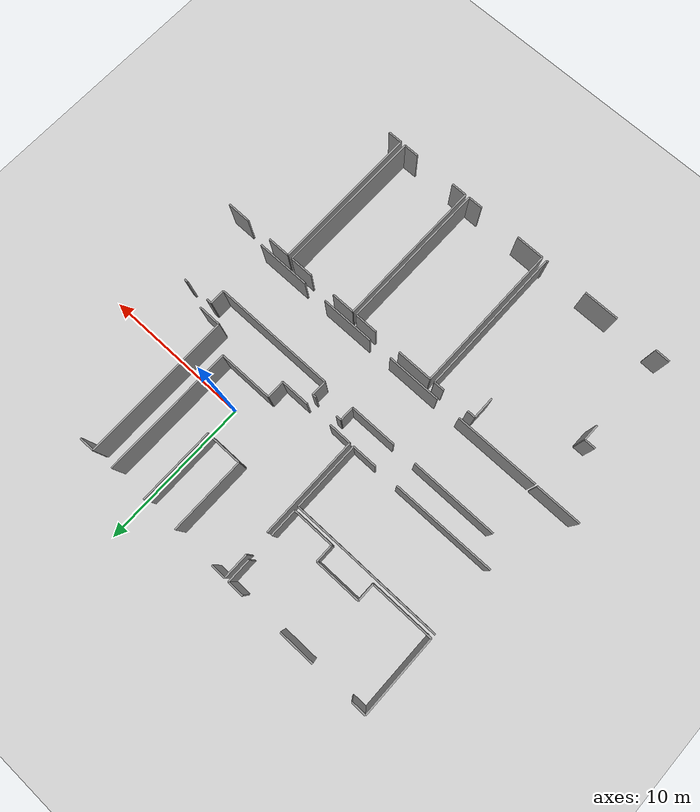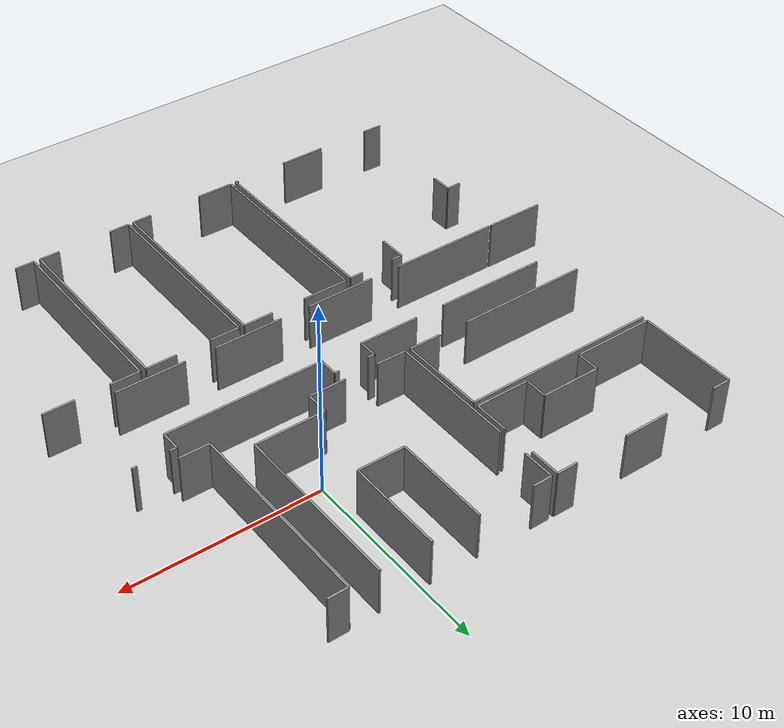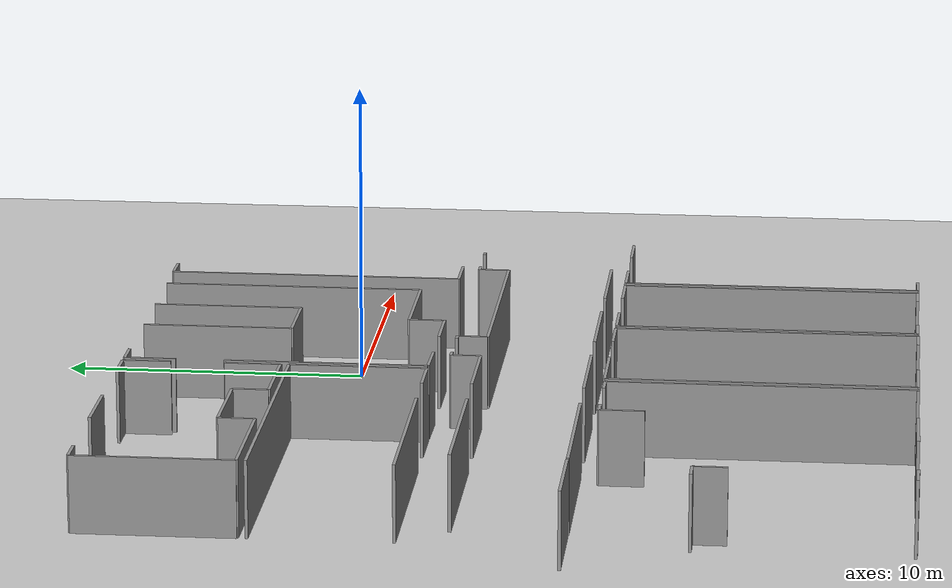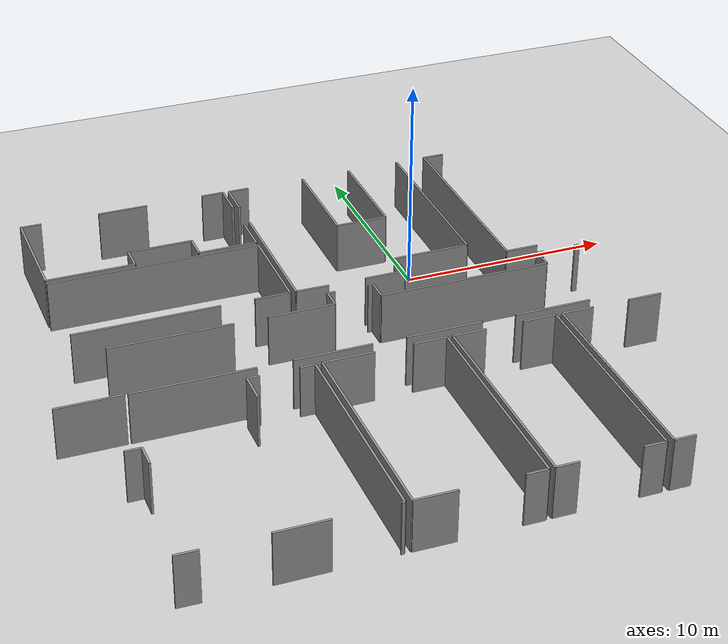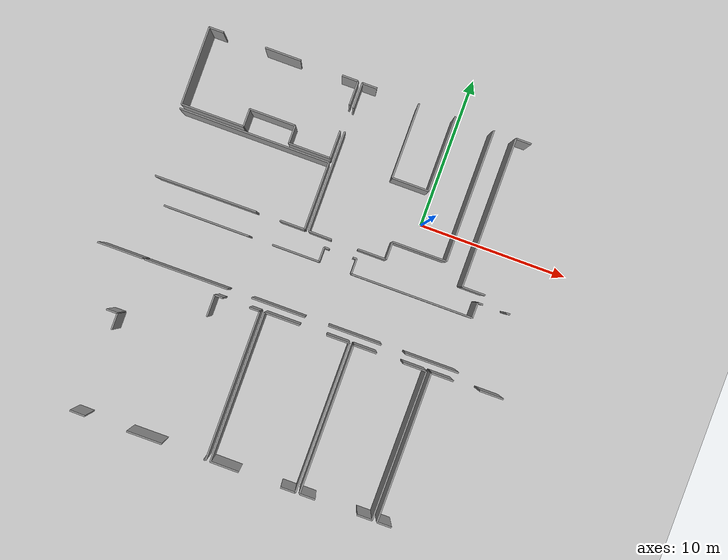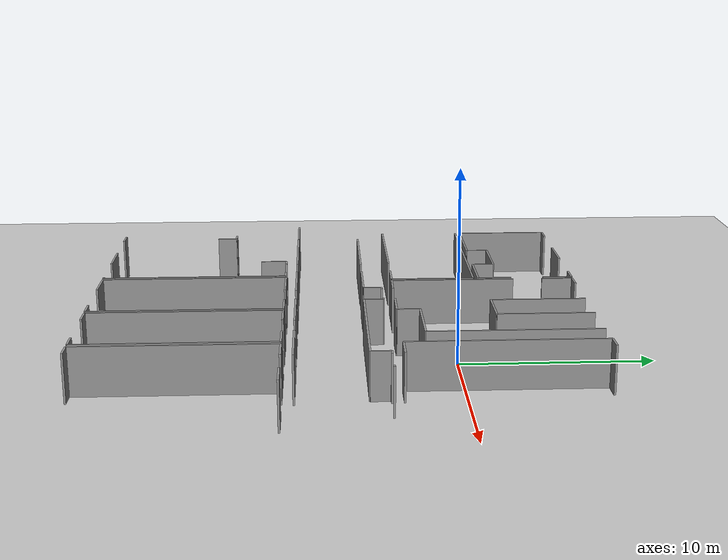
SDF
<sdf version="1.6">
 <world name="default">
  <model name="ground_plane">
   <static>1</static>
   <link name="link">
    <collision name="collision">
     <geometry><plane><normal>0 0 1</normal><size>100 100</size></plane></geometry>
     <surface><friction><ode><mu>100</mu><mu2>50</mu2></ode></friction></surface>
    </collision>
    <visual name="visual">
     <cast_shadows>0</cast_shadows>
     <geometry><plane><normal>0 0 1</normal><size>100 100</size></plane></geometry>
     <material>
      <script><uri>file://media/materials/scripts/gazebo.material</uri><name>Gazebo/Grey</name></script>
     </material>
    </visual>
   </link>
  </model>
  <model name="50055641">
   <static>1</static>
   <link name="Wall_58">
    <collision name="Wall_58_Collision">
     <geometry><box><size>3.02174713402 0.1 2.5</size></box></geometry>
     <pose>1.51087356701 0 1.25 0 0 0</pose>
    </collision>
    <visual name="Wall_58_Visual">
     <pose>1.51087356701 0 1.25 0 0 0</pose>
     <geometry><box><size>3.02174713402 0.1 2.5</size></box></geometry>
     <material>
      <script><uri>file://media/materials/scripts/gazebo.material</uri><name>Gazebo/Grey</name></script>
      <ambient>1 1 1 1</ambient>
     </material>
    </visual>
    <pose>53.3327832015 -26.8581548579 0 0 0 3.14159265359</pose>
   </link>
   <link name="Wall_202">
    <collision name="Wall_202_Collision">
     <geometry><box><size>5.70160850081 0.1 2.5</size></box></geometry>
     <pose>2.8508042504 0 1.25 0 0 0</pose>
    </collision>
    <visual name="Wall_202_Visual">
     <pose>2.8508042504 0 1.25 0 0 0</pose>
     <geometry><box><size>5.70160850081 0.1 2.5</size></box></geometry>
     <material>
      <script><uri>file://media/materials/scripts/gazebo.material</uri><name>Gazebo/Grey</name></script>
      <ambient>1 1 1 1</ambient>
     </material>
    </visual>
    <pose>53.4577054425 -23.2691794995 0 0 0 0.0</pose>
   </link>
   <link name="Wall_203">
    <collision name="Wall_203_Collision">
     <geometry><box><size>3.12305602458 0.1 2.5</size></box></geometry>
     <pose>1.56152801229 0 1.25 0 0 0</pose>
    </collision>
    <visual name="Wall_203_Visual">
     <pose>1.56152801229 0 1.25 0 0 0</pose>
     <geometry><box><size>3.12305602458 0.1 2.5</size></box></geometry>
     <material>
      <script><uri>file://media/materials/scripts/gazebo.material</uri><name>Gazebo/Grey</name></script>
      <ambient>1 1 1 1</ambient>
     </material>
    </visual>
    <pose>60.7218575836 -23.2691794995 0 0 0 0.0</pose>
   </link>
   <link name="Wall_204">
    <collision name="Wall_204_Collision">
     <geometry><box><size>0.968655181607 0.1 2.5</size></box></geometry>
     <pose>0.484327590803 0 1.25 0 0 0</pose>
    </collision>
    <visual name="Wall_204_Visual">
     <pose>0.484327590803 0 1.25 0 0 0</pose>
     <geometry><box><size>0.968655181607 0.1 2.5</size></box></geometry>
     <material>
      <script><uri>file://media/materials/scripts/gazebo.material</uri><name>Gazebo/Grey</name></script>
      <ambient>1 1 1 1</ambient>
     </material>
    </visual>
    <pose>63.8449136081 -23.2691794995 0 0 0 1.57079632679</pose>
   </link>
   <link name="Wall_205">
    <collision name="Wall_205_Collision">
     <geometry><box><size>0.347852581599 0.1 2.5</size></box></geometry>
     <pose>0.1739262908 0 1.25 0 0 0</pose>
    </collision>
    <visual name="Wall_205_Visual">
     <pose>0.1739262908 0 1.25 0 0 0</pose>
     <geometry><box><size>0.347852581599 0.1 2.5</size></box></geometry>
     <material>
      <script><uri>file://media/materials/scripts/gazebo.material</uri><name>Gazebo/Grey</name></script>
      <ambient>1 1 1 1</ambient>
     </material>
    </visual>
    <pose>63.8449136081 -22.3005243179 0 0 0 0.0</pose>
   </link>
   <link name="Wall_206">
    <collision name="Wall_206_Collision">
     <geometry><box><size>0.242862039635 0.1 2.5</size></box></geometry>
     <pose>0.121431019817 0 1.25 0 0 0</pose>
    </collision>
    <visual name="Wall_206_Visual">
     <pose>0.121431019817 0 1.25 0 0 0</pose>
     <geometry><box><size>0.242862039635 0.1 2.5</size></box></geometry>
     <material>
      <script><uri>file://media/materials/scripts/gazebo.material</uri><name>Gazebo/Grey</name></script>
      <ambient>1 1 1 1</ambient>
     </material>
    </visual>
    <pose>65.776257157 -22.3005243179 0 0 0 0.0</pose>
   </link>
   <link name="Wall_207">
    <collision name="Wall_207_Collision">
     <geometry><box><size>1.00953420762 0.1 2.5</size></box></geometry>
     <pose>0.50476710381 0 1.25 0 0 0</pose>
    </collision>
    <visual name="Wall_207_Visual">
     <pose>0.50476710381 0 1.25 0 0 0</pose>
     <geometry><box><size>1.00953420762 0.1 2.5</size></box></geometry>
     <material>
      <script><uri>file://media/materials/scripts/gazebo.material</uri><name>Gazebo/Grey</name></script>
      <ambient>1 1 1 1</ambient>
     </material>
    </visual>
    <pose>66.0191191966 -22.3005243179 0 0 0 -1.57079632679</pose>
   </link>
   <link name="Wall_208">
    <collision name="Wall_208_Collision">
     <geometry><box><size>8.11397884955 0.1 2.5</size></box></geometry>
     <pose>4.05698942477 0 1.25 0 0 0</pose>
    </collision>
    <visual name="Wall_208_Visual">
     <pose>4.05698942477 0 1.25 0 0 0</pose>
     <geometry><box><size>8.11397884955 0.1 2.5</size></box></geometry>
     <material>
      <script><uri>file://media/materials/scripts/gazebo.material</uri><name>Gazebo/Grey</name></script>
      <ambient>1 1 1 1</ambient>
     </material>
    </visual>
    <pose>66.0191191966 -23.3100585256 0 0 0 0.0</pose>
   </link>
   <link name="Wall_209">
    <collision name="Wall_209_Collision">
     <geometry><box><size>1.01562797547 0.1 2.5</size></box></geometry>
     <pose>0.507813987736 0 1.25 0 0 0</pose>
    </collision>
    <visual name="Wall_209_Visual">
     <pose>0.507813987736 0 1.25 0 0 0</pose>
     <geometry><box><size>1.01562797547 0.1 2.5</size></box></geometry>
     <material>
      <script><uri>file://media/materials/scripts/gazebo.material</uri><name>Gazebo/Grey</name></script>
      <ambient>1 1 1 1</ambient>
     </material>
    </visual>
    <pose>74.1330980462 -23.3100585256 0 0 0 1.57079632679</pose>
   </link>
   <link name="Wall_210">
    <collision name="Wall_210_Collision">
     <geometry><box><size>0.342266627734 0.1 2.5</size></box></geometry>
     <pose>0.171133313867 0 1.25 0 0 0</pose>
    </collision>
    <visual name="Wall_210_Visual">
     <pose>0.171133313867 0 1.25 0 0 0</pose>
     <geometry><box><size>0.342266627734 0.1 2.5</size></box></geometry>
     <material>
      <script><uri>file://media/materials/scripts/gazebo.material</uri><name>Gazebo/Grey</name></script>
      <ambient>1 1 1 1</ambient>
     </material>
    </visual>
    <pose>74.1330980462 -22.2944305501 0 0 0 0.0</pose>
   </link>
   <link name="Wall_211">
    <collision name="Wall_211_Collision">
     <geometry><box><size>0.242862039635 0.1 2.5</size></box></geometry>
     <pose>0.121431019817 0 1.25 0 0 0</pose>
    </collision>
    <visual name="Wall_211_Visual">
     <pose>0.121431019817 0 1.25 0 0 0</pose>
     <geometry><box><size>0.242862039635 0.1 2.5</size></box></geometry>
     <material>
      <script><uri>file://media/materials/scripts/gazebo.material</uri><name>Gazebo/Grey</name></script>
      <ambient>1 1 1 1</ambient>
     </material>
    </visual>
    <pose>76.0540314083 -22.2944305501 0 0 0 0.0</pose>
   </link>
   <link name="Wall_239">
    <collision name="Wall_239_Collision">
     <geometry><box><size>3.58783277685 0.1 2.5</size></box></geometry>
     <pose>1.79391638843 0 1.25 0 0 0</pose>
    </collision>
    <visual name="Wall_239_Visual">
     <pose>1.79391638843 0 1.25 0 0 0</pose>
     <geometry><box><size>3.58783277685 0.1 2.5</size></box></geometry>
     <material>
      <script><uri>file://media/materials/scripts/gazebo.material</uri><name>Gazebo/Grey</name></script>
      <ambient>1 1 1 1</ambient>
     </material>
    </visual>
    <pose>74.5084995366 -26.8594243928 0 0 0 3.14159265359</pose>
   </link>
   <link name="Wall_240">
    <collision name="Wall_240_Collision">
     <geometry><box><size>3.55622135612 0.1 2.5</size></box></geometry>
     <pose>1.77811067806 0 1.25 0 0 0</pose>
    </collision>
    <visual name="Wall_240_Visual">
     <pose>1.77811067806 0 1.25 0 0 0</pose>
     <geometry><box><size>3.55622135612 0.1 2.5</size></box></geometry>
     <material>
      <script><uri>file://media/materials/scripts/gazebo.material</uri><name>Gazebo/Grey</name></script>
      <ambient>1 1 1 1</ambient>
     </material>
    </visual>
    <pose>69.3392070485 -26.8594243928 0 0 0 3.14159265359</pose>
   </link>
   <link name="Wall_241">
    <collision name="Wall_241_Collision">
     <geometry><box><size>3.59976640557 0.1 2.5</size></box></geometry>
     <pose>1.79988320278 0 1.25 0 0 0</pose>
    </collision>
    <visual name="Wall_241_Visual">
     <pose>1.79988320278 0 1.25 0 0 0</pose>
     <geometry><box><size>3.59976640557 0.1 2.5</size></box></geometry>
     <material>
      <script><uri>file://media/materials/scripts/gazebo.material</uri><name>Gazebo/Grey</name></script>
      <ambient>1 1 1 1</ambient>
     </material>
    </visual>
    <pose>64.2278053549 -26.8594243928 0 0 0 3.14159265359</pose>
   </link>
   <link name="Wall_242">
    <collision name="Wall_242_Collision">
     <geometry><box><size>5.57276725746 0.1 2.5</size></box></geometry>
     <pose>2.78638362873 0 1.25 0 0 0</pose>
    </collision>
    <visual name="Wall_242_Visual">
     <pose>2.78638362873 0 1.25 0 0 0</pose>
     <geometry><box><size>5.57276725746 0.1 2.5</size></box></geometry>
     <material>
      <script><uri>file://media/materials/scripts/gazebo.material</uri><name>Gazebo/Grey</name></script>
      <ambient>1 1 1 1</ambient>
     </material>
    </visual>
    <pose>59.0304561439 -26.8594243928 0 0 0 -3.13915507868</pose>
   </link>
   <link name="Wall_244">
    <collision name="Wall_244_Collision">
     <geometry><box><size>10.0008886745 0.1 2.5</size></box></geometry>
     <pose>5.00044433724 0 1.25 0 0 0</pose>
    </collision>
    <visual name="Wall_244_Visual">
     <pose>5.00044433724 0 1.25 0 0 0</pose>
     <geometry><box><size>10.0008886745 0.1 2.5</size></box></geometry>
     <material>
      <script><uri>file://media/materials/scripts/gazebo.material</uri><name>Gazebo/Grey</name></script>
      <ambient>1 1 1 1</ambient>
     </material>
    </visual>
    <pose>52.2970965735 -17.1835366705 0 0 0 0.0</pose>
   </link>
   <link name="Wall_245">
    <collision name="Wall_245_Collision">
     <geometry><box><size>4.48755220963 0.1 2.5</size></box></geometry>
     <pose>2.24377610481 0 1.25 0 0 0</pose>
    </collision>
    <visual name="Wall_245_Visual">
     <pose>2.24377610481 0 1.25 0 0 0</pose>
     <geometry><box><size>4.48755220963 0.1 2.5</size></box></geometry>
     <material>
      <script><uri>file://media/materials/scripts/gazebo.material</uri><name>Gazebo/Grey</name></script>
      <ambient>1 1 1 1</ambient>
     </material>
    </visual>
    <pose>62.297985248 -17.1835366705 0 0 0 -1.57079632679</pose>
   </link>
   <link name="Wall_246">
    <collision name="Wall_246_Collision">
     <geometry><box><size>1.65268062309 0.1 2.5</size></box></geometry>
     <pose>0.826340311544 0 1.25 0 0 0</pose>
    </collision>
    <visual name="Wall_246_Visual">
     <pose>0.826340311544 0 1.25 0 0 0</pose>
     <geometry><box><size>1.65268062309 0.1 2.5</size></box></geometry>
     <material>
      <script><uri>file://media/materials/scripts/gazebo.material</uri><name>Gazebo/Grey</name></script>
      <ambient>1 1 1 1</ambient>
     </material>
    </visual>
    <pose>62.297985248 -21.6710888801 0 0 0 3.14159265359</pose>
   </link>
   <link name="Wall_247">
    <collision name="Wall_247_Collision">
     <geometry><box><size>6.76629506893 0.1 2.5</size></box></geometry>
     <pose>3.38314753446 0 1.25 0 0 0</pose>
    </collision>
    <visual name="Wall_247_Visual">
     <pose>3.38314753446 0 1.25 0 0 0</pose>
     <geometry><box><size>6.76629506893 0.1 2.5</size></box></geometry>
     <material>
      <script><uri>file://media/materials/scripts/gazebo.material</uri><name>Gazebo/Grey</name></script>
      <ambient>1 1 1 1</ambient>
     </material>
    </visual>
    <pose>59.0633370996 -21.6710888801 0 0 0 -3.13757743979</pose>
   </link>
   <link name="Wall_248">
    <collision name="Wall_248_Collision">
     <geometry><box><size>6.65274409984 0.1 2.5</size></box></geometry>
     <pose>3.32637204992 0 1.25 0 0 0</pose>
    </collision>
    <visual name="Wall_248_Visual">
     <pose>3.32637204992 0 1.25 0 0 0</pose>
     <geometry><box><size>6.65274409984 0.1 2.5</size></box></geometry>
     <material>
      <script><uri>file://media/materials/scripts/gazebo.material</uri><name>Gazebo/Grey</name></script>
      <ambient>1 1 1 1</ambient>
     </material>
    </visual>
    <pose>62.5817263137 -21.675913113 0 0 0 1.57079632679</pose>
   </link>
   <link name="Wall_249">
    <collision name="Wall_249_Collision">
     <geometry><box><size>1.67781741548 0.1 2.5</size></box></geometry>
     <pose>0.83890870774 0 1.25 0 0 0</pose>
    </collision>
    <visual name="Wall_249_Visual">
     <pose>0.83890870774 0 1.25 0 0 0</pose>
     <geometry><box><size>1.67781741548 0.1 2.5</size></box></geometry>
     <material>
      <script><uri>file://media/materials/scripts/gazebo.material</uri><name>Gazebo/Grey</name></script>
      <ambient>1 1 1 1</ambient>
     </material>
    </visual>
    <pose>62.5817263137 -13.4438675113 0 0 0 1.57079632679</pose>
   </link>
   <link name="Wall_250">
    <collision name="Wall_250_Collision">
     <geometry><box><size>0.985032182711 0.1 2.5</size></box></geometry>
     <pose>0.492516091356 0 1.25 0 0 0</pose>
    </collision>
    <visual name="Wall_250_Visual">
     <pose>0.492516091356 0 1.25 0 0 0</pose>
     <geometry><box><size>0.985032182711 0.1 2.5</size></box></geometry>
     <material>
      <script><uri>file://media/materials/scripts/gazebo.material</uri><name>Gazebo/Grey</name></script>
      <ambient>1 1 1 1</ambient>
     </material>
    </visual>
    <pose>62.5817263137 -11.7660500958 0 0 0 0.0</pose>
   </link>
   <link name="Wall_251">
    <collision name="Wall_251_Collision">
     <geometry><box><size>4.96667470705 0.1 2.5</size></box></geometry>
     <pose>2.48333735353 0 1.25 0 0 0</pose>
    </collision>
    <visual name="Wall_251_Visual">
     <pose>2.48333735353 0 1.25 0 0 0</pose>
     <geometry><box><size>4.96667470705 0.1 2.5</size></box></geometry>
     <material>
      <script><uri>file://media/materials/scripts/gazebo.material</uri><name>Gazebo/Grey</name></script>
      <ambient>1 1 1 1</ambient>
     </material>
    </visual>
    <pose>66.3881730122 -11.7660500958 0 0 0 -1.57079632679</pose>
   </link>
   <link name="Wall_252">
    <collision name="Wall_252_Collision">
     <geometry><box><size>2.43598369917 0.1 2.5</size></box></geometry>
     <pose>1.21799184959 0 1.25 0 0 0</pose>
    </collision>
    <visual name="Wall_252_Visual">
     <pose>1.21799184959 0 1.25 0 0 0</pose>
     <geometry><box><size>2.43598369917 0.1 2.5</size></box></geometry>
     <material>
      <script><uri>file://media/materials/scripts/gazebo.material</uri><name>Gazebo/Grey</name></script>
      <ambient>1 1 1 1</ambient>
     </material>
    </visual>
    <pose>66.3881730122 -16.7327248029 0 0 0 0.0</pose>
   </link>
   <link name="Wall_253">
    <collision name="Wall_253_Collision">
     <geometry><box><size>4.98406733613 0.1 2.5</size></box></geometry>
     <pose>2.49203366807 0 1.25 0 0 0</pose>
    </collision>
    <visual name="Wall_253_Visual">
     <pose>2.49203366807 0 1.25 0 0 0</pose>
     <geometry><box><size>4.98406733613 0.1 2.5</size></box></geometry>
     <material>
      <script><uri>file://media/materials/scripts/gazebo.material</uri><name>Gazebo/Grey</name></script>
      <ambient>1 1 1 1</ambient>
     </material>
    </visual>
    <pose>68.8241567114 -16.7327248029 0 0 0 1.57079632679</pose>
   </link>
   <link name="Wall_254">
    <collision name="Wall_254_Collision">
     <geometry><box><size>8.7658850563 0.1 2.5</size></box></geometry>
     <pose>4.38294252815 0 1.25 0 0 0</pose>
    </collision>
    <visual name="Wall_254_Visual">
     <pose>4.38294252815 0 1.25 0 0 0</pose>
     <geometry><box><size>8.7658850563 0.1 2.5</size></box></geometry>
     <material>
      <script><uri>file://media/materials/scripts/gazebo.material</uri><name>Gazebo/Grey</name></script>
      <ambient>1 1 1 1</ambient>
     </material>
    </visual>
    <pose>71.3966154198 -11.7486574668 0 0 0 -1.57079632679</pose>
   </link>
   <link name="Wall_255">
    <collision name="Wall_255_Collision">
     <geometry><box><size>3.61043049931 0.1 2.5</size></box></geometry>
     <pose>1.80521524965 0 1.25 0 0 0</pose>
    </collision>
    <visual name="Wall_255_Visual">
     <pose>1.80521524965 0 1.25 0 0 0</pose>
     <geometry><box><size>3.61043049931 0.1 2.5</size></box></geometry>
     <material>
      <script><uri>file://media/materials/scripts/gazebo.material</uri><name>Gazebo/Grey</name></script>
      <ambient>1 1 1 1</ambient>
     </material>
    </visual>
    <pose>71.3966154198 -20.5145425231 0 0 0 3.14159265359</pose>
   </link>
   <link name="Wall_256">
    <collision name="Wall_256_Collision">
     <geometry><box><size>1.18307963793 0.1 2.5</size></box></geometry>
     <pose>0.591539818964 0 1.25 0 0 0</pose>
    </collision>
    <visual name="Wall_256_Visual">
     <pose>0.591539818964 0 1.25 0 0 0</pose>
     <geometry><box><size>1.18307963793 0.1 2.5</size></box></geometry>
     <material>
      <script><uri>file://media/materials/scripts/gazebo.material</uri><name>Gazebo/Grey</name></script>
      <ambient>1 1 1 1</ambient>
     </material>
    </visual>
    <pose>67.7861849205 -20.5145425231 0 0 0 -1.57079632679</pose>
   </link>
   <link name="Wall_257">
    <collision name="Wall_257_Collision">
     <geometry><box><size>1.90176338407 0.1 2.5</size></box></geometry>
     <pose>0.950881692036 0 1.25 0 0 0</pose>
    </collision>
    <visual name="Wall_257_Visual">
     <pose>0.950881692036 0 1.25 0 0 0</pose>
     <geometry><box><size>1.90176338407 0.1 2.5</size></box></geometry>
     <material>
      <script><uri>file://media/materials/scripts/gazebo.material</uri><name>Gazebo/Grey</name></script>
      <ambient>1 1 1 1</ambient>
     </material>
    </visual>
    <pose>67.7861849205 -21.697622161 0 0 0 3.14159265359</pose>
   </link>
   <link name="Wall_258">
    <collision name="Wall_258_Collision">
     <geometry><box><size>1.53616376307 0.1 2.5</size></box></geometry>
     <pose>0.768081881534 0 1.25 0 0 0</pose>
    </collision>
    <visual name="Wall_258_Visual">
     <pose>0.768081881534 0 1.25 0 0 0</pose>
     <geometry><box><size>1.53616376307 0.1 2.5</size></box></geometry>
     <material>
      <script><uri>file://media/materials/scripts/gazebo.material</uri><name>Gazebo/Grey</name></script>
      <ambient>1 1 1 1</ambient>
     </material>
    </visual>
    <pose>64.1177366731 -21.697622161 0 0 0 3.12746019509</pose>
   </link>
   <link name="Wall_259">
    <collision name="Wall_259_Collision">
     <geometry><box><size>5.14821820767 0.1 2.5</size></box></geometry>
     <pose>2.57410910384 0 1.25 0 0 0</pose>
    </collision>
    <visual name="Wall_259_Visual">
     <pose>2.57410910384 0 1.25 0 0 0</pose>
     <geometry><box><size>5.14821820767 0.1 2.5</size></box></geometry>
     <material>
      <script><uri>file://media/materials/scripts/gazebo.material</uri><name>Gazebo/Grey</name></script>
      <ambient>1 1 1 1</ambient>
     </material>
    </visual>
    <pose>52.3175360865 -16.8976373954 0 0 0 1.57079632679</pose>
   </link>
   <link name="Wall_260">
    <collision name="Wall_260_Collision">
     <geometry><box><size>0.956848506392 0.1 2.5</size></box></geometry>
     <pose>0.478424253196 0 1.25 0 0 0</pose>
    </collision>
    <visual name="Wall_260_Visual">
     <pose>0.478424253196 0 1.25 0 0 0</pose>
     <geometry><box><size>0.956848506392 0.1 2.5</size></box></geometry>
     <material>
      <script><uri>file://media/materials/scripts/gazebo.material</uri><name>Gazebo/Grey</name></script>
      <ambient>1 1 1 1</ambient>
     </material>
    </visual>
    <pose>52.3175360865 -11.7494191878 0 0 0 0.0</pose>
   </link>
   <link name="Wall_261">
    <collision name="Wall_261_Collision">
     <geometry><box><size>2.37326867169 0.1 2.5</size></box></geometry>
     <pose>1.18663433584 0 1.25 0 0 0</pose>
    </collision>
    <visual name="Wall_261_Visual">
     <pose>1.18663433584 0 1.25 0 0 0</pose>
     <geometry><box><size>2.37326867169 0.1 2.5</size></box></geometry>
     <material>
      <script><uri>file://media/materials/scripts/gazebo.material</uri><name>Gazebo/Grey</name></script>
      <ambient>1 1 1 1</ambient>
     </material>
    </visual>
    <pose>56.0739631073 -11.7494191878 0 0 0 0.0</pose>
   </link>
   <link name="Wall_262">
    <collision name="Wall_262_Collision">
     <geometry><box><size>1.07301095609 0.1 2.5</size></box></geometry>
     <pose>0.536505478043 0 1.25 0 0 0</pose>
    </collision>
    <visual name="Wall_262_Visual">
     <pose>0.536505478043 0 1.25 0 0 0</pose>
     <geometry><box><size>1.07301095609 0.1 2.5</size></box></geometry>
     <material>
      <script><uri>file://media/materials/scripts/gazebo.material</uri><name>Gazebo/Grey</name></script>
      <ambient>1 1 1 1</ambient>
     </material>
    </visual>
    <pose>61.2181188031 -11.7494191878 0 0 0 0.0</pose>
   </link>
   <link name="Wall_263">
    <collision name="Wall_263_Collision">
     <geometry><box><size>1.58349096726 0.1 2.5</size></box></geometry>
     <pose>0.791745483629 0 1.25 0 0 0</pose>
    </collision>
    <visual name="Wall_263_Visual">
     <pose>0.791745483629 0 1.25 0 0 0</pose>
     <geometry><box><size>1.58349096726 0.1 2.5</size></box></geometry>
     <material>
      <script><uri>file://media/materials/scripts/gazebo.material</uri><name>Gazebo/Grey</name></script>
      <ambient>1 1 1 1</ambient>
     </material>
    </visual>
    <pose>62.2911297592 -11.7494191878 0 0 0 -1.57079632679</pose>
   </link>
   <link name="Wall_264">
    <collision name="Wall_264_Collision">
     <geometry><box><size>1.8219096345 0.1 2.5</size></box></geometry>
     <pose>0.91095481725 0 1.25 0 0 0</pose>
    </collision>
    <visual name="Wall_264_Visual">
     <pose>0.91095481725 0 1.25 0 0 0</pose>
     <geometry><box><size>1.8219096345 0.1 2.5</size></box></geometry>
     <material>
      <script><uri>file://media/materials/scripts/gazebo.material</uri><name>Gazebo/Grey</name></script>
      <ambient>1 1 1 1</ambient>
     </material>
    </visual>
    <pose>62.2911297592 -15.0851223197 0 0 0 -1.57079632679</pose>
   </link>
   <link name="Wall_265">
    <collision name="Wall_265_Collision">
     <geometry><box><size>2.774187815 0.1 2.5</size></box></geometry>
     <pose>1.3870939075 0 1.25 0 0 0</pose>
    </collision>
    <visual name="Wall_265_Visual">
     <pose>1.3870939075 0 1.25 0 0 0</pose>
     <geometry><box><size>2.774187815 0.1 2.5</size></box></geometry>
     <material>
      <script><uri>file://media/materials/scripts/gazebo.material</uri><name>Gazebo/Grey</name></script>
      <ambient>1 1 1 1</ambient>
     </material>
    </visual>
    <pose>62.2911297592 -16.9070319542 0 0 0 3.14159265359</pose>
   </link>
   <link name="Wall_266">
    <collision name="Wall_266_Collision">
     <geometry><box><size>1.18117533547 0.1 2.5</size></box></geometry>
     <pose>0.590587667737 0 1.25 0 0 0</pose>
    </collision>
    <visual name="Wall_266_Visual">
     <pose>0.590587667737 0 1.25 0 0 0</pose>
     <geometry><box><size>1.18117533547 0.1 2.5</size></box></geometry>
     <material>
      <script><uri>file://media/materials/scripts/gazebo.material</uri><name>Gazebo/Grey</name></script>
      <ambient>1 1 1 1</ambient>
     </material>
    </visual>
    <pose>59.5169419442 -16.9070319542 0 0 0 1.57079632679</pose>
   </link>
   <link name="Wall_267">
    <collision name="Wall_267_Collision">
     <geometry><box><size>3.04688392642 0.1 2.5</size></box></geometry>
     <pose>1.52344196321 0 1.25 0 0 0</pose>
    </collision>
    <visual name="Wall_267_Visual">
     <pose>1.52344196321 0 1.25 0 0 0</pose>
     <geometry><box><size>3.04688392642 0.1 2.5</size></box></geometry>
     <material>
      <script><uri>file://media/materials/scripts/gazebo.material</uri><name>Gazebo/Grey</name></script>
      <ambient>1 1 1 1</ambient>
     </material>
    </visual>
    <pose>59.5169419442 -15.7258566187 0 0 0 3.14159265359</pose>
   </link>
   <link name="Wall_268">
    <collision name="Wall_268_Collision">
     <geometry><box><size>1.17025733474 0.1 2.5</size></box></geometry>
     <pose>0.585128667369 0 1.25 0 0 0</pose>
    </collision>
    <visual name="Wall_268_Visual">
     <pose>0.585128667369 0 1.25 0 0 0</pose>
     <geometry><box><size>1.17025733474 0.1 2.5</size></box></geometry>
     <material>
      <script><uri>file://media/materials/scripts/gazebo.material</uri><name>Gazebo/Grey</name></script>
      <ambient>1 1 1 1</ambient>
     </material>
    </visual>
    <pose>56.4700580177 -15.7258566187 0 0 0 -1.57079632679</pose>
   </link>
   <link name="Wall_269">
    <collision name="Wall_269_Collision">
     <geometry><box><size>4.15252221067 0.1 2.5</size></box></geometry>
     <pose>2.07626110534 0 1.25 0 0 0</pose>
    </collision>
    <visual name="Wall_269_Visual">
     <pose>2.07626110534 0 1.25 0 0 0</pose>
     <geometry><box><size>4.15252221067 0.1 2.5</size></box></geometry>
     <material>
      <script><uri>file://media/materials/scripts/gazebo.material</uri><name>Gazebo/Grey</name></script>
      <ambient>1 1 1 1</ambient>
     </material>
    </visual>
    <pose>56.4700580177 -16.8961139535 0 0 0 -3.1412257821</pose>
   </link>
   <link name="Wall_270">
    <collision name="Wall_270_Collision">
     <geometry><box><size>9.93665020503 0.1 2.5</size></box></geometry>
     <pose>4.96832510251 0 1.25 0 0 0</pose>
    </collision>
    <visual name="Wall_270_Visual">
     <pose>4.96832510251 0 1.25 0 0 0</pose>
     <geometry><box><size>9.93665020503 0.1 2.5</size></box></geometry>
     <material>
      <script><uri>file://media/materials/scripts/gazebo.material</uri><name>Gazebo/Grey</name></script>
      <ambient>1 1 1 1</ambient>
     </material>
    </visual>
    <pose>72.8770201475 -21.6853076718 0 0 0 1.57079632679</pose>
   </link>
   <link name="Wall_271">
    <collision name="Wall_271_Collision">
     <geometry><box><size>1.02159478983 0.1 2.5</size></box></geometry>
     <pose>0.510797394914 0 1.25 0 0 0</pose>
    </collision>
    <visual name="Wall_271_Visual">
     <pose>0.510797394914 0 1.25 0 0 0</pose>
     <geometry><box><size>1.02159478983 0.1 2.5</size></box></geometry>
     <material>
      <script><uri>file://media/materials/scripts/gazebo.material</uri><name>Gazebo/Grey</name></script>
      <ambient>1 1 1 1</ambient>
     </material>
    </visual>
    <pose>72.8770201475 -11.7486574668 0 0 0 0.0</pose>
   </link>
   <link name="Wall_275">
    <collision name="Wall_275_Collision">
     <geometry><box><size>1.53589180089 0.1 2.5</size></box></geometry>
     <pose>0.767945900446 0 1.25 0 0 0</pose>
    </collision>
    <visual name="Wall_275_Visual">
     <pose>0.767945900446 0 1.25 0 0 0</pose>
     <geometry><box><size>1.53589180089 0.1 2.5</size></box></geometry>
     <material>
      <script><uri>file://media/materials/scripts/gazebo.material</uri><name>Gazebo/Grey</name></script>
      <ambient>1 1 1 1</ambient>
     </material>
    </visual>
    <pose>74.4129035534 -21.6903858117 0 0 0 3.13828633401</pose>
   </link>
   <link name="Wall_326">
    <collision name="Wall_326_Collision">
     <geometry><box><size>0.969543856086 0.1 2.5</size></box></geometry>
     <pose>0.484771928043 0 1.25 0 0 0</pose>
    </collision>
    <visual name="Wall_326_Visual">
     <pose>0.484771928043 0 1.25 0 0 0</pose>
     <geometry><box><size>0.969543856086 0.1 2.5</size></box></geometry>
     <material>
      <script><uri>file://media/materials/scripts/gazebo.material</uri><name>Gazebo/Grey</name></script>
      <ambient>1 1 1 1</ambient>
     </material>
    </visual>
    <pose>73.8562124694 -37.4477268976 0 0 0 3.14159265359</pose>
   </link>
   <link name="Wall_327">
    <collision name="Wall_327_Collision">
     <geometry><box><size>9.99314451117 0.1 2.5</size></box></geometry>
     <pose>4.99657225558 0 1.25 0 0 0</pose>
    </collision>
    <visual name="Wall_327_Visual">
     <pose>4.99657225558 0 1.25 0 0 0</pose>
     <geometry><box><size>9.99314451117 0.1 2.5</size></box></geometry>
     <material>
      <script><uri>file://media/materials/scripts/gazebo.material</uri><name>Gazebo/Grey</name></script>
      <ambient>1 1 1 1</ambient>
     </material>
    </visual>
    <pose>72.8866686133 -37.4477268976 0 0 0 1.57079632679</pose>
   </link>
   <link name="Wall_328">
    <collision name="Wall_328_Collision">
     <geometry><box><size>1.5070649621 0.1 2.5</size></box></geometry>
     <pose>0.753532481052 0 1.25 0 0 0</pose>
    </collision>
    <visual name="Wall_328_Visual">
     <pose>0.753532481052 0 1.25 0 0 0</pose>
     <geometry><box><size>1.5070649621 0.1 2.5</size></box></geometry>
     <material>
      <script><uri>file://media/materials/scripts/gazebo.material</uri><name>Gazebo/Grey</name></script>
      <ambient>1 1 1 1</ambient>
     </material>
    </visual>
    <pose>72.8866686133 -27.4545823865 0 0 0 0.0</pose>
   </link>
   <link name="Wall_329">
    <collision name="Wall_329_Collision">
     <geometry><box><size>1.58971168861 0.1 2.5</size></box></geometry>
     <pose>0.794855844304 0 1.25 0 0 0</pose>
    </collision>
    <visual name="Wall_329_Visual">
     <pose>0.794855844304 0 1.25 0 0 0</pose>
     <geometry><box><size>1.58971168861 0.1 2.5</size></box></geometry>
     <material>
      <script><uri>file://media/materials/scripts/gazebo.material</uri><name>Gazebo/Grey</name></script>
      <ambient>1 1 1 1</ambient>
     </material>
    </visual>
    <pose>76.1422640887 -27.4545823865 0 0 0 0.0</pose>
   </link>
   <link name="Wall_331">
    <collision name="Wall_331_Collision">
     <geometry><box><size>1.01385062652 0.1 2.5</size></box></geometry>
     <pose>0.506925313258 0 1.25 0 0 0</pose>
    </collision>
    <visual name="Wall_331_Visual">
     <pose>0.506925313258 0 1.25 0 0 0</pose>
     <geometry><box><size>1.01385062652 0.1 2.5</size></box></geometry>
     <material>
      <script><uri>file://media/materials/scripts/gazebo.material</uri><name>Gazebo/Grey</name></script>
      <ambient>1 1 1 1</ambient>
     </material>
    </visual>
    <pose>72.5526539629 -37.4393479668 0 0 0 3.14159265359</pose>
   </link>
   <link name="Wall_332">
    <collision name="Wall_332_Collision">
     <geometry><box><size>1.04863588468 0.1 2.5</size></box></geometry>
     <pose>0.524317942338 0 1.25 0 0 0</pose>
    </collision>
    <visual name="Wall_332_Visual">
     <pose>0.524317942338 0 1.25 0 0 0</pose>
     <geometry><box><size>1.04863588468 0.1 2.5</size></box></geometry>
     <material>
      <script><uri>file://media/materials/scripts/gazebo.material</uri><name>Gazebo/Grey</name></script>
      <ambient>1 1 1 1</ambient>
     </material>
    </visual>
    <pose>68.7347814496 -37.4393479668 0 0 0 3.14159265359</pose>
   </link>
   <link name="Wall_333">
    <collision name="Wall_333_Collision">
     <geometry><box><size>9.97854485902 0.1 2.5</size></box></geometry>
     <pose>4.98927242951 0 1.25 0 0 0</pose>
    </collision>
    <visual name="Wall_333_Visual">
     <pose>4.98927242951 0 1.25 0 0 0</pose>
     <geometry><box><size>9.97854485902 0.1 2.5</size></box></geometry>
     <material>
      <script><uri>file://media/materials/scripts/gazebo.material</uri><name>Gazebo/Grey</name></script>
      <ambient>1 1 1 1</ambient>
     </material>
    </visual>
    <pose>67.6861455649 -37.4393479668 0 0 0 1.57079632679</pose>
   </link>
   <link name="Wall_334">
    <collision name="Wall_334_Collision">
     <geometry><box><size>1.55644987241 0.1 2.5</size></box></geometry>
     <pose>0.778224936206 0 1.25 0 0 0</pose>
    </collision>
    <visual name="Wall_334_Visual">
     <pose>0.778224936206 0 1.25 0 0 0</pose>
     <geometry><box><size>1.55644987241 0.1 2.5</size></box></geometry>
     <material>
      <script><uri>file://media/materials/scripts/gazebo.material</uri><name>Gazebo/Grey</name></script>
      <ambient>1 1 1 1</ambient>
     </material>
    </visual>
    <pose>67.6861455649 -27.4608031078 0 0 0 0.0</pose>
   </link>
   <link name="Wall_335">
    <collision name="Wall_335_Collision">
     <geometry><box><size>1.57511203646 0.1 2.5</size></box></geometry>
     <pose>0.787556018231 0 1.25 0 0 0</pose>
    </collision>
    <visual name="Wall_335_Visual">
     <pose>0.787556018231 0 1.25 0 0 0</pose>
     <geometry><box><size>1.57511203646 0.1 2.5</size></box></geometry>
     <material>
      <script><uri>file://media/materials/scripts/gazebo.material</uri><name>Gazebo/Grey</name></script>
      <ambient>1 1 1 1</ambient>
     </material>
    </visual>
    <pose>71.0014091838 -27.4608031078 0 0 0 0.0</pose>
   </link>
   <link name="Wall_336">
    <collision name="Wall_336_Collision">
     <geometry><box><size>9.97857340252 0.1 2.5</size></box></geometry>
     <pose>4.98928670126 0 1.25 0 0 0</pose>
    </collision>
    <visual name="Wall_336_Visual">
     <pose>4.98928670126 0 1.25 0 0 0</pose>
     <geometry><box><size>9.97857340252 0.1 2.5</size></box></geometry>
     <material>
      <script><uri>file://media/materials/scripts/gazebo.material</uri><name>Gazebo/Grey</name></script>
      <ambient>1 1 1 1</ambient>
     </material>
    </visual>
    <pose>72.5765212203 -27.4608031078 0 0 0 -1.57318817974</pose>
   </link>
   <link name="Wall_337">
    <collision name="Wall_337_Collision">
     <geometry><box><size>9.99124020871 0.1 2.5</size></box></geometry>
     <pose>4.99562010436 0 1.25 0 0 0</pose>
    </collision>
    <visual name="Wall_337_Visual">
     <pose>4.99562010436 0 1.25 0 0 0</pose>
     <geometry><box><size>9.99124020871 0.1 2.5</size></box></geometry>
     <material>
      <script><uri>file://media/materials/scripts/gazebo.material</uri><name>Gazebo/Grey</name></script>
      <ambient>1 1 1 1</ambient>
     </material>
    </visual>
    <pose>61.7120948597 -37.4437913392 0 0 0 1.57079632679</pose>
   </link>
   <link name="Wall_338">
    <collision name="Wall_338_Collision">
     <geometry><box><size>2.37403039267 0.1 2.5</size></box></geometry>
     <pose>1.18701519633 0 1.25 0 0 0</pose>
    </collision>
    <visual name="Wall_338_Visual">
     <pose>1.18701519633 0 1.25 0 0 0</pose>
     <geometry><box><size>2.37403039267 0.1 2.5</size></box></geometry>
     <material>
      <script><uri>file://media/materials/scripts/gazebo.material</uri><name>Gazebo/Grey</name></script>
      <ambient>1 1 1 1</ambient>
     </material>
    </visual>
    <pose>61.7120948597 -27.4525511305 0 0 0 0.0</pose>
   </link>
   <link name="Wall_339">
    <collision name="Wall_339_Collision">
     <geometry><box><size>1.54756312763 0.1 2.5</size></box></geometry>
     <pose>0.773781563813 0 1.25 0 0 0</pose>
    </collision>
    <visual name="Wall_339_Visual">
     <pose>0.773781563813 0 1.25 0 0 0</pose>
     <geometry><box><size>1.54756312763 0.1 2.5</size></box></geometry>
     <material>
      <script><uri>file://media/materials/scripts/gazebo.material</uri><name>Gazebo/Grey</name></script>
      <ambient>1 1 1 1</ambient>
     </material>
    </visual>
    <pose>65.8660132793 -27.4525511305 0 0 0 0.0</pose>
   </link>
   <link name="Wall_340">
    <collision name="Wall_340_Collision">
     <geometry><box><size>10.0039355584 0.1 2.5</size></box></geometry>
     <pose>5.0019677792 0 1.25 0 0 0</pose>
    </collision>
    <visual name="Wall_340_Visual">
     <pose>5.0019677792 0 1.25 0 0 0</pose>
     <geometry><box><size>10.0039355584 0.1 2.5</size></box></geometry>
     <material>
      <script><uri>file://media/materials/scripts/gazebo.material</uri><name>Gazebo/Grey</name></script>
      <ambient>1 1 1 1</ambient>
     </material>
    </visual>
    <pose>67.413576407 -27.4525511305 0 0 0 -1.57079632679</pose>
   </link>
   <link name="Wall_341">
    <collision name="Wall_341_Collision">
     <geometry><box><size>0.991506811055 0.1 2.5</size></box></geometry>
     <pose>0.495753405528 0 1.25 0 0 0</pose>
    </collision>
    <visual name="Wall_341_Visual">
     <pose>0.495753405528 0 1.25 0 0 0</pose>
     <geometry><box><size>0.991506811055 0.1 2.5</size></box></geometry>
     <material>
      <script><uri>file://media/materials/scripts/gazebo.material</uri><name>Gazebo/Grey</name></script>
      <ambient>1 1 1 1</ambient>
     </material>
    </visual>
    <pose>67.413576407 -37.4564866889 0 0 0 3.14159265359</pose>
   </link>
   <link name="Wall_342">
    <collision name="Wall_342_Collision">
     <geometry><box><size>1.90434477137 0.1 2.5</size></box></geometry>
     <pose>0.952172385687 0 1.25 0 0 0</pose>
    </collision>
    <visual name="Wall_342_Visual">
     <pose>0.952172385687 0 1.25 0 0 0</pose>
     <geometry><box><size>1.90434477137 0.1 2.5</size></box></geometry>
     <material>
      <script><uri>file://media/materials/scripts/gazebo.material</uri><name>Gazebo/Grey</name></script>
      <ambient>1 1 1 1</ambient>
     </material>
    </visual>
    <pose>63.6163973137 -37.4564866889 0 0 0 3.13492608569</pose>
   </link>
   <link name="Wall_345">
    <collision name="Wall_345_Collision">
     <geometry><box><size>1.09598953903 0.1 2.5</size></box></geometry>
     <pose>0.547994769516 0 1.25 0 0 0</pose>
    </collision>
    <visual name="Wall_345_Visual">
     <pose>0.547994769516 0 1.25 0 0 0</pose>
     <geometry><box><size>1.09598953903 0.1 2.5</size></box></geometry>
     <material>
      <script><uri>file://media/materials/scripts/gazebo.material</uri><name>Gazebo/Grey</name></script>
      <ambient>1 1 1 1</ambient>
     </material>
    </visual>
    <pose>53.0221279945 -31.7508156762 0 0 0 1.57079632679</pose>
   </link>
   <link name="Wall_346">
    <collision name="Wall_346_Collision">
     <geometry><box><size>0.74039279412 0.1 2.5</size></box></geometry>
     <pose>0.37019639706 0 1.25 0 0 0</pose>
    </collision>
    <visual name="Wall_346_Visual">
     <pose>0.37019639706 0 1.25 0 0 0</pose>
     <geometry><box><size>0.74039279412 0.1 2.5</size></box></geometry>
     <material>
      <script><uri>file://media/materials/scripts/gazebo.material</uri><name>Gazebo/Grey</name></script>
      <ambient>1 1 1 1</ambient>
     </material>
    </visual>
    <pose>53.0221279945 -30.6548261372 0 0 0 3.14159265359</pose>
   </link>
   <link name="Wall_349">
    <collision name="Wall_349_Collision">
     <geometry><box><size>1.44447688812 0.1 2.5</size></box></geometry>
     <pose>0.722238444058 0 1.25 0 0 0</pose>
    </collision>
    <visual name="Wall_349_Visual">
     <pose>0.722238444058 0 1.25 0 0 0</pose>
     <geometry><box><size>1.44447688812 0.1 2.5</size></box></geometry>
     <material>
      <script><uri>file://media/materials/scripts/gazebo.material</uri><name>Gazebo/Grey</name></script>
      <ambient>1 1 1 1</ambient>
     </material>
    </visual>
    <pose>58.3862941005 -28.9344793002 0 0 0 1.57079632679</pose>
   </link>
   <link name="Wall_350">
    <collision name="Wall_350_Collision">
     <geometry><box><size>0.551612944179 0.1 2.5</size></box></geometry>
     <pose>0.275806472089 0 1.25 0 0 0</pose>
    </collision>
    <visual name="Wall_350_Visual">
     <pose>0.275806472089 0 1.25 0 0 0</pose>
     <geometry><box><size>0.551612944179 0.1 2.5</size></box></geometry>
     <material>
      <script><uri>file://media/materials/scripts/gazebo.material</uri><name>Gazebo/Grey</name></script>
      <ambient>1 1 1 1</ambient>
     </material>
    </visual>
    <pose>58.3862941005 -27.4900024121 0 0 0 0.0</pose>
   </link>
   <link name="Wall_351">
    <collision name="Wall_351_Collision">
     <geometry><box><size>0.701164163567 0.1 2.5</size></box></geometry>
     <pose>0.350582081783 0 1.25 0 0 0</pose>
    </collision>
    <visual name="Wall_351_Visual">
     <pose>0.350582081783 0 1.25 0 0 0</pose>
     <geometry><box><size>0.701164163567 0.1 2.5</size></box></geometry>
     <material>
      <script><uri>file://media/materials/scripts/gazebo.material</uri><name>Gazebo/Grey</name></script>
      <ambient>1 1 1 1</ambient>
     </material>
    </visual>
    <pose>60.70357628 -27.4900024121 0 0 0 0.0</pose>
   </link>
   <link name="Wall_352">
    <collision name="Wall_352_Collision">
     <geometry><box><size>9.95772448552 0.1 2.5</size></box></geometry>
     <pose>4.97886224276 0 1.25 0 0 0</pose>
    </collision>
    <visual name="Wall_352_Visual">
     <pose>4.97886224276 0 1.25 0 0 0</pose>
     <geometry><box><size>9.95772448552 0.1 2.5</size></box></geometry>
     <material>
      <script><uri>file://media/materials/scripts/gazebo.material</uri><name>Gazebo/Grey</name></script>
      <ambient>1 1 1 1</ambient>
     </material>
    </visual>
    <pose>61.4047404436 -27.4900024121 0 0 0 -1.57079632679</pose>
   </link>
   <link name="Wall_353">
    <collision name="Wall_353_Collision">
     <geometry><box><size>0.133555078775 0.1 2.5</size></box></geometry>
     <pose>0.0667775393873 0 1.25 0 0 0</pose>
    </collision>
    <visual name="Wall_353_Visual">
     <pose>0.0667775393873 0 1.25 0 0 0</pose>
     <geometry><box><size>0.133555078775 0.1 2.5</size></box></geometry>
     <material>
      <script><uri>file://media/materials/scripts/gazebo.material</uri><name>Gazebo/Grey</name></script>
      <ambient>1 1 1 1</ambient>
     </material>
    </visual>
    <pose>61.4047404436 -37.4477268976 0 0 0 3.14159265359</pose>
   </link>
   <link name="Wall_354">
    <collision name="Wall_354_Collision">
     <geometry><box><size>2.36146199647 0.1 2.5</size></box></geometry>
     <pose>1.18073099824 0 1.25 0 0 0</pose>
    </collision>
    <visual name="Wall_354_Visual">
     <pose>1.18073099824 0 1.25 0 0 0</pose>
     <geometry><box><size>2.36146199647 0.1 2.5</size></box></geometry>
     <material>
      <script><uri>file://media/materials/scripts/gazebo.material</uri><name>Gazebo/Grey</name></script>
      <ambient>1 1 1 1</ambient>
     </material>
    </visual>
    <pose>58.4585306402 -37.4477268976 0 0 0 3.14159265359</pose>
   </link>
   <link name="Wall_355">
    <collision name="Wall_355_Collision">
     <geometry><box><size>1.01769648849 0.1 2.5</size></box></geometry>
     <pose>0.508848244244 0 1.25 0 0 0</pose>
    </collision>
    <visual name="Wall_355_Visual">
     <pose>0.508848244244 0 1.25 0 0 0</pose>
     <geometry><box><size>1.01769648849 0.1 2.5</size></box></geometry>
     <material>
      <script><uri>file://media/materials/scripts/gazebo.material</uri><name>Gazebo/Grey</name></script>
      <ambient>1 1 1 1</ambient>
     </material>
    </visual>
    <pose>53.3035838972 -37.4477268976 0 0 0 3.12362827316</pose>
   </link>
   <pose>-69.25 18.7344164583 0 0 0 0</pose>
  </model>
 </world>
</sdf>
